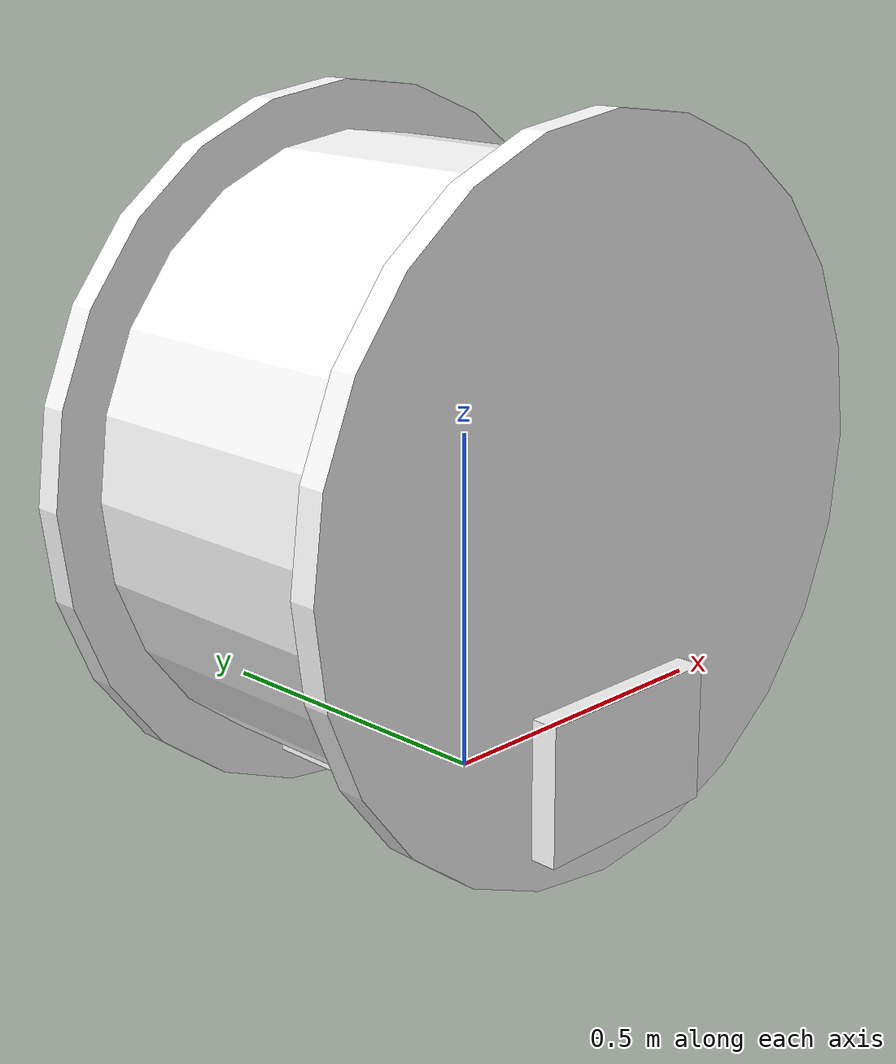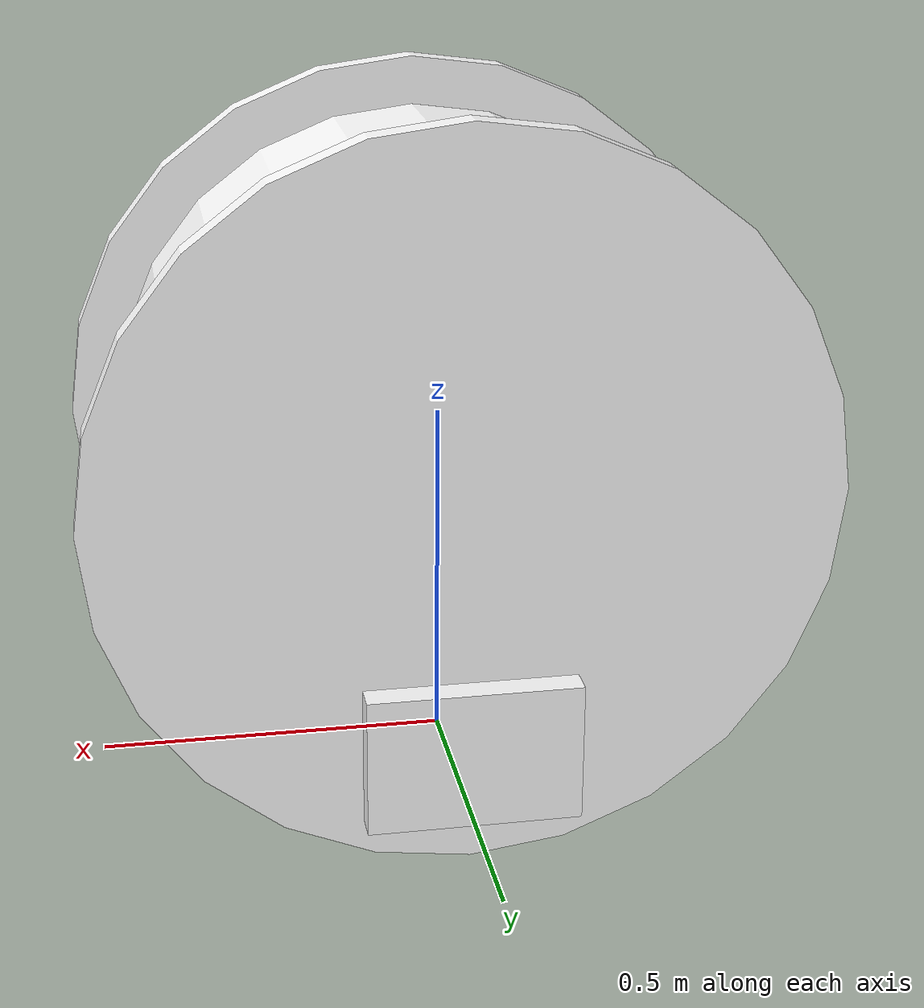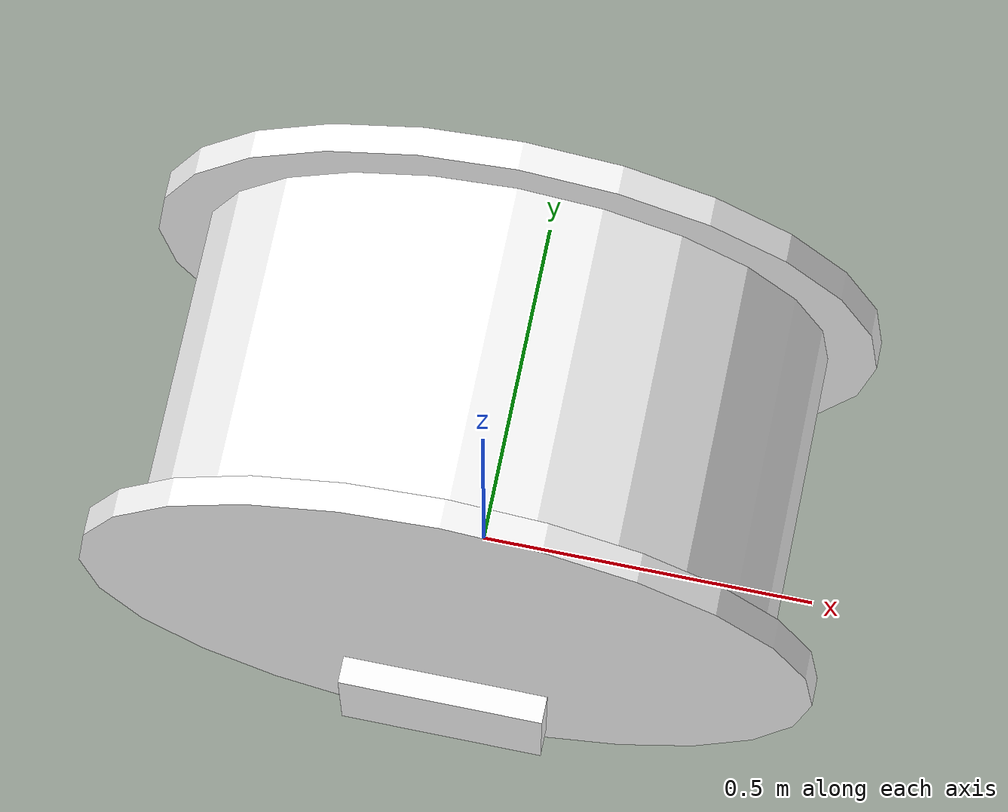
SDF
<?xml version="1.0"?>
<sdf version="1.10">
  <model name="cable_reel">
    <static>true</static>
      <link name="body">
        <collision name="drum_col"><pose>0 0 0.45 1.5708 0 0</pose>
          <geometry><cylinder><radius>0.45</radius><length>0.5</length></cylinder>
          </geometry></collision>
        <visual name="drum_vis"><pose>0 0 0.45 1.5708 0 0</pose>
          <geometry><cylinder><radius>0.45</radius><length>0.5</length></cylinder></geometry>
          <material>
          <diffuse>1 1 1 1</diffuse>
          <specular>0.15 0.15 0.15 1</specular>
          <pbr><metal>
            <albedo_map>model://slam_assets/materials/textures/cable_black.png</albedo_map>
            <roughness>0.85</roughness><metalness>0.0</metalness>
          </metal></pbr>
        </material>
        </visual>
        <collision name="flangeA_col"><pose>0 -0.25 0.45 1.5708 0 0</pose>
          <geometry><cylinder><radius>0.52</radius><length>0.04</length></cylinder>
          </geometry></collision>
        <visual name="flangeA_vis"><pose>0 -0.25 0.45 1.5708 0 0</pose>
          <geometry><cylinder><radius>0.52</radius><length>0.04</length></cylinder></geometry>
          <material>
          <diffuse>1 1 1 1</diffuse>
          <specular>0.15 0.15 0.15 1</specular>
          <pbr><metal>
            <albedo_map>model://slam_assets/materials/textures/metal_panel.png</albedo_map>
            <roughness>0.85</roughness><metalness>0.0</metalness>
          </metal></pbr>
        </material>
        </visual>
        <collision name="flangeB_col"><pose>0 0.25 0.45 1.5708 0 0</pose>
          <geometry><cylinder><radius>0.52</radius><length>0.04</length></cylinder>
          </geometry></collision>
        <visual name="flangeB_vis"><pose>0 0.25 0.45 1.5708 0 0</pose>
          <geometry><cylinder><radius>0.52</radius><length>0.04</length></cylinder></geometry>
          <material>
          <diffuse>1 1 1 1</diffuse>
          <specular>0.15 0.15 0.15 1</specular>
          <pbr><metal>
            <albedo_map>model://slam_assets/materials/textures/metal_panel.png</albedo_map>
            <roughness>0.85</roughness><metalness>0.0</metalness>
          </metal></pbr>
        </material>
        </visual>
        <collision name="frame_col"><pose>0 0 0.10 0 0 0</pose>
          <geometry><box><size>0.30 0.62 0.20</size></box></geometry></collision>
        <visual name="frame_vis"><pose>0 0 0.10 0 0 0</pose>
          <geometry><box><size>0.30 0.62 0.20</size></box></geometry>
          <material>
          <diffuse>1 1 1 1</diffuse>
          <specular>0.15 0.15 0.15 1</specular>
          <pbr><metal>
            <albedo_map>model://slam_assets/materials/textures/metal_panel.png</albedo_map>
            <roughness>0.85</roughness><metalness>0.0</metalness>
          </metal></pbr>
        </material>
        </visual>
      </link>
  </model>
</sdf>
